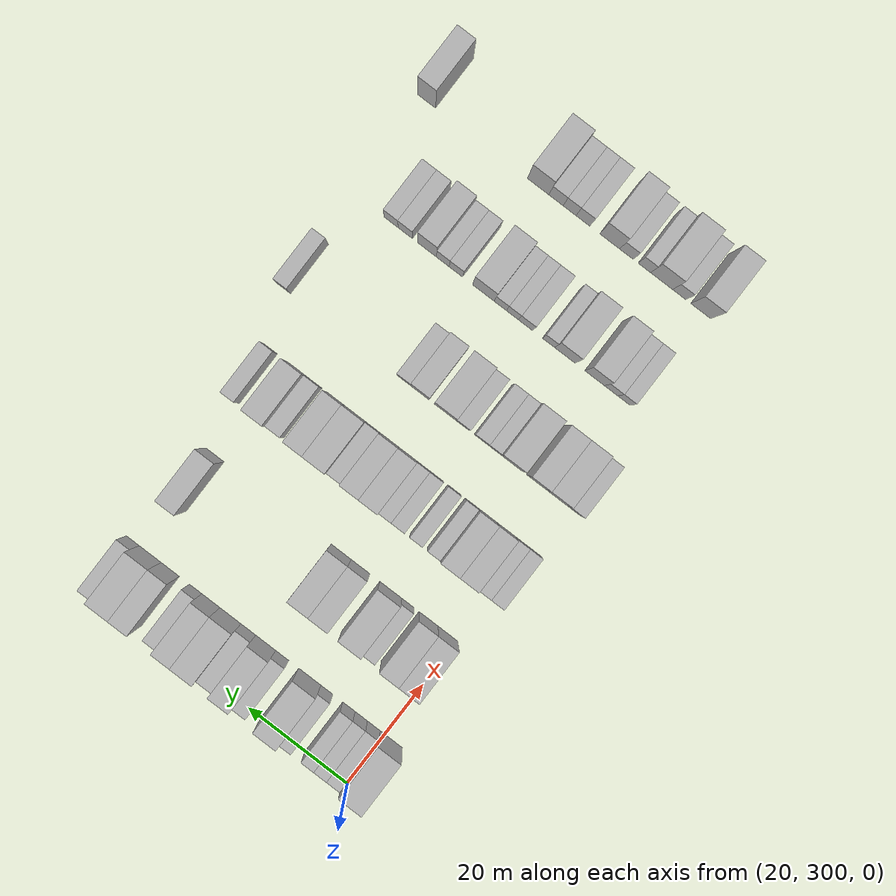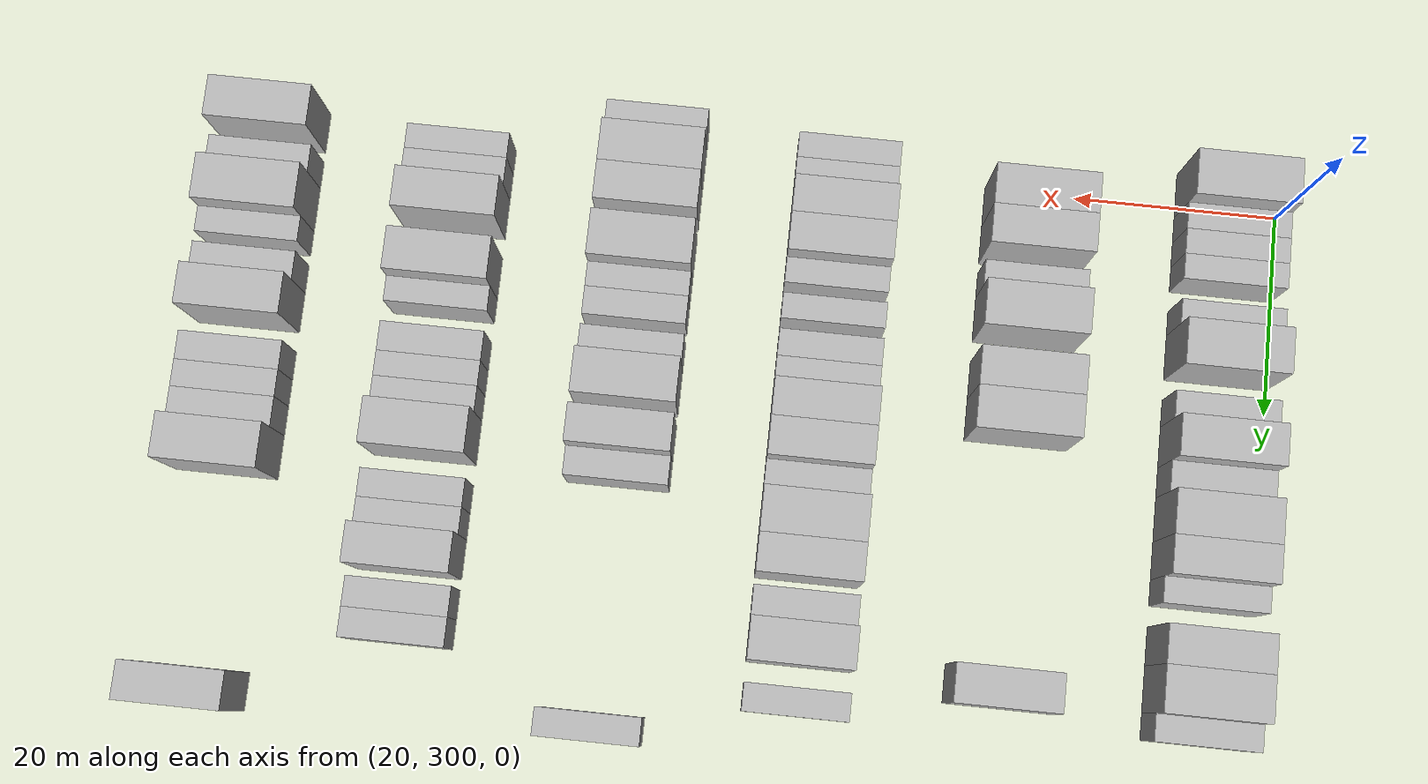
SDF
<sdf version="1.6">
 <world name="default">
  <model name="building_159">
   <static>1</static>
   <pose>25.0000 298.7395 0 0.000000 0.000000 0.000000</pose>
   <link name="link">
    <pose>0 0 4.50 0 0 0</pose>
    <collision name="collision"><geometry><box><size>10.0000 4.4855 9.0000</size></box></geometry></collision>
    <visual name="visual">
     <cast_shadows>0</cast_shadows>
     <geometry><box><size>10.0000 4.4855 9.0000</size></box></geometry>
     <material>
      <script>
       <uri>model://HANNAS_wall/materials/scripts</uri>
       <uri>model://HANNAS_wall/materials/textures</uri>
       <name>vrc/HANNAS_wall</name>
      </script>
     </material>
    </visual>
   </link>
  </model>
  <model name="building_160">
   <static>1</static>
   <pose>25.0000 302.2808 0 0.000000 0.000000 0.000000</pose>
   <link name="link">
    <pose>0 0 3.00 0 0 0</pose>
    <collision name="collision"><geometry><box><size>10.0000 2.5971 6.0000</size></box></geometry></collision>
    <visual name="visual">
     <cast_shadows>0</cast_shadows>
     <geometry><box><size>10.0000 2.5971 6.0000</size></box></geometry>
     <material>
      <script>
       <uri>model://HANNAS_wall/materials/scripts</uri>
       <uri>model://HANNAS_wall/materials/textures</uri>
       <name>vrc/HANNAS_wall</name>
      </script>
     </material>
    </visual>
   </link>
  </model>
  <model name="building_161">
   <static>1</static>
   <pose>25.0000 304.8237 0 0.000000 0.000000 0.000000</pose>
   <link name="link">
    <pose>0 0 3.00 0 0 0</pose>
    <collision name="collision"><geometry><box><size>10.0000 2.4886 6.0000</size></box></geometry></collision>
    <visual name="visual">
     <cast_shadows>0</cast_shadows>
     <geometry><box><size>10.0000 2.4886 6.0000</size></box></geometry>
     <material>
      <script>
       <uri>model://HANNAS_wall/materials/scripts</uri>
       <uri>model://HANNAS_wall/materials/textures</uri>
       <name>vrc/HANNAS_wall</name>
      </script>
     </material>
    </visual>
   </link>
  </model>
  <model name="building_162">
   <static>1</static>
   <pose>25.0000 307.3164 0 0.000000 0.000000 0.000000</pose>
   <link name="link">
    <pose>0 0 3.00 0 0 0</pose>
    <collision name="collision"><geometry><box><size>10.0000 2.4968 6.0000</size></box></geometry></collision>
    <visual name="visual">
     <cast_shadows>0</cast_shadows>
     <geometry><box><size>10.0000 2.4968 6.0000</size></box></geometry>
     <material>
      <script>
       <uri>model://HANNAS_wall/materials/scripts</uri>
       <uri>model://HANNAS_wall/materials/textures</uri>
       <name>vrc/HANNAS_wall</name>
      </script>
     </material>
    </visual>
   </link>
  </model>
  <model name="building_163">
   <static>1</static>
   <pose>25.0000 311.7886 0 0.000000 0.000000 0.000000</pose>
   <link name="link">
    <pose>0 0 3.00 0 0 0</pose>
    <collision name="collision"><geometry><box><size>10.0000 2.4477 6.0000</size></box></geometry></collision>
    <visual name="visual">
     <cast_shadows>0</cast_shadows>
     <geometry><box><size>10.0000 2.4477 6.0000</size></box></geometry>
     <material>
      <script>
       <uri>model://HANNAS_wall/materials/scripts</uri>
       <uri>model://HANNAS_wall/materials/textures</uri>
       <name>vrc/HANNAS_wall</name>
      </script>
     </material>
    </visual>
   </link>
  </model>
  <model name="building_164">
   <static>1</static>
   <pose>25.0000 315.2476 0 0.000000 0.000000 0.000000</pose>
   <link name="link">
    <pose>0 0 4.50 0 0 0</pose>
    <collision name="collision"><geometry><box><size>10.0000 4.4702 9.0000</size></box></geometry></collision>
    <visual name="visual">
     <cast_shadows>0</cast_shadows>
     <geometry><box><size>10.0000 4.4702 9.0000</size></box></geometry>
     <material>
      <script>
       <uri>model://HANNAS_wall/materials/scripts</uri>
       <uri>model://HANNAS_wall/materials/textures</uri>
       <name>vrc/HANNAS_wall</name>
      </script>
     </material>
    </visual>
   </link>
  </model>
  <model name="building_165">
   <static>1</static>
   <pose>25.0000 320.8200 0 0.000000 0.000000 0.000000</pose>
   <link name="link">
    <pose>0 0 3.00 0 0 0</pose>
    <collision name="collision"><geometry><box><size>10.0000 2.6747 6.0000</size></box></geometry></collision>
    <visual name="visual">
     <cast_shadows>0</cast_shadows>
     <geometry><box><size>10.0000 2.6747 6.0000</size></box></geometry>
     <material>
      <script>
       <uri>model://HANNAS_wall/materials/scripts</uri>
       <uri>model://HANNAS_wall/materials/textures</uri>
       <name>vrc/HANNAS_wall</name>
      </script>
     </material>
    </visual>
   </link>
  </model>
  <model name="building_166">
   <static>1</static>
   <pose>25.0000 324.1825 0 0.000000 0.000000 0.000000</pose>
   <link name="link">
    <pose>0 0 4.50 0 0 0</pose>
    <collision name="collision"><geometry><box><size>10.0000 4.0502 9.0000</size></box></geometry></collision>
    <visual name="visual">
     <cast_shadows>0</cast_shadows>
     <geometry><box><size>10.0000 4.0502 9.0000</size></box></geometry>
     <material>
      <script>
       <uri>model://HANNAS_wall/materials/scripts</uri>
       <uri>model://HANNAS_wall/materials/textures</uri>
       <name>vrc/HANNAS_wall</name>
      </script>
     </material>
    </visual>
   </link>
  </model>
  <model name="building_167">
   <static>1</static>
   <pose>25.0000 327.6981 0 0.000000 0.000000 0.000000</pose>
   <link name="link">
    <pose>0 0 3.00 0 0 0</pose>
    <collision name="collision"><geometry><box><size>10.0000 2.9810 6.0000</size></box></geometry></collision>
    <visual name="visual">
     <cast_shadows>0</cast_shadows>
     <geometry><box><size>10.0000 2.9810 6.0000</size></box></geometry>
     <material>
      <script>
       <uri>model://HANNAS_wall/materials/scripts</uri>
       <uri>model://HANNAS_wall/materials/textures</uri>
       <name>vrc/HANNAS_wall</name>
      </script>
     </material>
    </visual>
   </link>
  </model>
  <model name="building_168">
   <static>1</static>
   <pose>25.0000 331.3362 0 0.000000 0.000000 0.000000</pose>
   <link name="link">
    <pose>0 0 4.50 0 0 0</pose>
    <collision name="collision"><geometry><box><size>10.0000 4.2954 9.0000</size></box></geometry></collision>
    <visual name="visual">
     <cast_shadows>0</cast_shadows>
     <geometry><box><size>10.0000 4.2954 9.0000</size></box></geometry>
     <material>
      <script>
       <uri>model://HANNAS_wall/materials/scripts</uri>
       <uri>model://HANNAS_wall/materials/textures</uri>
       <name>vrc/HANNAS_wall</name>
      </script>
     </material>
    </visual>
   </link>
  </model>
  <model name="building_169">
   <static>1</static>
   <pose>25.0000 335.3184 0 0.000000 0.000000 0.000000</pose>
   <link name="link">
    <pose>0 0 4.50 0 0 0</pose>
    <collision name="collision"><geometry><box><size>10.0000 3.6690 9.0000</size></box></geometry></collision>
    <visual name="visual">
     <cast_shadows>0</cast_shadows>
     <geometry><box><size>10.0000 3.6690 9.0000</size></box></geometry>
     <material>
      <script>
       <uri>model://HANNAS_wall/materials/scripts</uri>
       <uri>model://HANNAS_wall/materials/textures</uri>
       <name>vrc/HANNAS_wall</name>
      </script>
     </material>
    </visual>
   </link>
  </model>
  <model name="building_170">
   <static>1</static>
   <pose>25.0000 338.4174 0 0.000000 0.000000 0.000000</pose>
   <link name="link">
    <pose>0 0 3.00 0 0 0</pose>
    <collision name="collision"><geometry><box><size>10.0000 2.5291 6.0000</size></box></geometry></collision>
    <visual name="visual">
     <cast_shadows>0</cast_shadows>
     <geometry><box><size>10.0000 2.5291 6.0000</size></box></geometry>
     <material>
      <script>
       <uri>model://HANNAS_wall/materials/scripts</uri>
       <uri>model://HANNAS_wall/materials/textures</uri>
       <name>vrc/HANNAS_wall</name>
      </script>
     </material>
    </visual>
   </link>
  </model>
  <model name="building_171">
   <static>1</static>
   <pose>25.0000 343.5344 0 0.000000 0.000000 0.000000</pose>
   <link name="link">
    <pose>0 0 4.50 0 0 0</pose>
    <collision name="collision"><geometry><box><size>10.0000 3.7047 9.0000</size></box></geometry></collision>
    <visual name="visual">
     <cast_shadows>0</cast_shadows>
     <geometry><box><size>10.0000 3.7047 9.0000</size></box></geometry>
     <material>
      <script>
       <uri>model://HANNAS_wall/materials/scripts</uri>
       <uri>model://HANNAS_wall/materials/textures</uri>
       <name>vrc/HANNAS_wall</name>
      </script>
     </material>
    </visual>
   </link>
  </model>
  <model name="building_172">
   <static>1</static>
   <pose>25.0000 347.6255 0 0.000000 0.000000 0.000000</pose>
   <link name="link">
    <pose>0 0 4.50 0 0 0</pose>
    <collision name="collision"><geometry><box><size>10.0000 4.4776 9.0000</size></box></geometry></collision>
    <visual name="visual">
     <cast_shadows>0</cast_shadows>
     <geometry><box><size>10.0000 4.4776 9.0000</size></box></geometry>
     <material>
      <script>
       <uri>model://HANNAS_wall/materials/scripts</uri>
       <uri>model://HANNAS_wall/materials/textures</uri>
       <name>vrc/HANNAS_wall</name>
      </script>
     </material>
    </visual>
   </link>
  </model>
  <model name="building_173">
   <static>1</static>
   <pose>25.0000 351.1604 0 0.000000 0.000000 0.000000</pose>
   <link name="link">
    <pose>0 0 3.00 0 0 0</pose>
    <collision name="collision"><geometry><box><size>10.0000 2.5922 6.0000</size></box></geometry></collision>
    <visual name="visual">
     <cast_shadows>0</cast_shadows>
     <geometry><box><size>10.0000 2.5922 6.0000</size></box></geometry>
     <material>
      <script>
       <uri>model://HANNAS_wall/materials/scripts</uri>
       <uri>model://HANNAS_wall/materials/textures</uri>
       <name>vrc/HANNAS_wall</name>
      </script>
     </material>
    </visual>
   </link>
  </model>
  <model name="building_342">
   <static>1</static>
   <pose>44.0000 301.8838 0 0.000000 0.000000 0.000000</pose>
   <link name="link">
    <pose>0 0 4.50 0 0 0</pose>
    <collision name="collision"><geometry><box><size>10.0000 3.9839 9.0000</size></box></geometry></collision>
    <visual name="visual">
     <cast_shadows>0</cast_shadows>
     <geometry><box><size>10.0000 3.9839 9.0000</size></box></geometry>
     <material>
      <script>
       <uri>model://HANNAS_wall/materials/scripts</uri>
       <uri>model://HANNAS_wall/materials/textures</uri>
       <name>vrc/HANNAS_wall</name>
      </script>
     </material>
    </visual>
   </link>
  </model>
  <model name="building_343">
   <static>1</static>
   <pose>44.0000 305.7755 0 0.000000 0.000000 0.000000</pose>
   <link name="link">
    <pose>0 0 4.50 0 0 0</pose>
    <collision name="collision"><geometry><box><size>10.0000 3.7995 9.0000</size></box></geometry></collision>
    <visual name="visual">
     <cast_shadows>0</cast_shadows>
     <geometry><box><size>10.0000 3.7995 9.0000</size></box></geometry>
     <material>
      <script>
       <uri>model://HANNAS_wall/materials/scripts</uri>
       <uri>model://HANNAS_wall/materials/textures</uri>
       <name>vrc/HANNAS_wall</name>
      </script>
     </material>
    </visual>
   </link>
  </model>
  <model name="building_344">
   <static>1</static>
   <pose>44.0000 309.9324 0 0.000000 0.000000 0.000000</pose>
   <link name="link">
    <pose>0 0 3.00 0 0 0</pose>
    <collision name="collision"><geometry><box><size>10.0000 2.5143 6.0000</size></box></geometry></collision>
    <visual name="visual">
     <cast_shadows>0</cast_shadows>
     <geometry><box><size>10.0000 2.5143 6.0000</size></box></geometry>
     <material>
      <script>
       <uri>model://HANNAS_wall/materials/scripts</uri>
       <uri>model://HANNAS_wall/materials/textures</uri>
       <name>vrc/HANNAS_wall</name>
      </script>
     </material>
    </visual>
   </link>
  </model>
  <model name="building_345">
   <static>1</static>
   <pose>44.0000 313.4138 0 0.000000 0.000000 0.000000</pose>
   <link name="link">
    <pose>0 0 4.50 0 0 0</pose>
    <collision name="collision"><geometry><box><size>10.0000 4.4484 9.0000</size></box></geometry></collision>
    <visual name="visual">
     <cast_shadows>0</cast_shadows>
     <geometry><box><size>10.0000 4.4484 9.0000</size></box></geometry>
     <material>
      <script>
       <uri>model://HANNAS_wall/materials/scripts</uri>
       <uri>model://HANNAS_wall/materials/textures</uri>
       <name>vrc/HANNAS_wall</name>
      </script>
     </material>
    </visual>
   </link>
  </model>
  <model name="building_346">
   <static>1</static>
   <pose>44.0000 319.5279 0 0.000000 0.000000 0.000000</pose>
   <link name="link">
    <pose>0 0 4.50 0 0 0</pose>
    <collision name="collision"><geometry><box><size>10.0000 3.7798 9.0000</size></box></geometry></collision>
    <visual name="visual">
     <cast_shadows>0</cast_shadows>
     <geometry><box><size>10.0000 3.7798 9.0000</size></box></geometry>
     <material>
      <script>
       <uri>model://HANNAS_wall/materials/scripts</uri>
       <uri>model://HANNAS_wall/materials/textures</uri>
       <name>vrc/HANNAS_wall</name>
      </script>
     </material>
    </visual>
   </link>
  </model>
  <model name="building_347">
   <static>1</static>
   <pose>44.0000 323.4569 0 0.000000 0.000000 0.000000</pose>
   <link name="link">
    <pose>0 0 4.50 0 0 0</pose>
    <collision name="collision"><geometry><box><size>10.0000 4.0780 9.0000</size></box></geometry></collision>
    <visual name="visual">
     <cast_shadows>0</cast_shadows>
     <geometry><box><size>10.0000 4.0780 9.0000</size></box></geometry>
     <material>
      <script>
       <uri>model://HANNAS_wall/materials/scripts</uri>
       <uri>model://HANNAS_wall/materials/textures</uri>
       <name>vrc/HANNAS_wall</name>
      </script>
     </material>
    </visual>
   </link>
  </model>
  <model name="building_348">
   <static>1</static>
   <pose>44.0000 349.0590 0 0.000000 0.000000 0.000000</pose>
   <link name="link">
    <pose>0 0 4.50 0 0 0</pose>
    <collision name="collision"><geometry><box><size>10.0000 3.7087 9.0000</size></box></geometry></collision>
    <visual name="visual">
     <cast_shadows>0</cast_shadows>
     <geometry><box><size>10.0000 3.7087 9.0000</size></box></geometry>
     <material>
      <script>
       <uri>model://HANNAS_wall/materials/scripts</uri>
       <uri>model://HANNAS_wall/materials/textures</uri>
       <name>vrc/HANNAS_wall</name>
      </script>
     </material>
    </visual>
   </link>
  </model>
  <model name="building_506">
   <static>1</static>
   <pose>63.0000 299.1091 0 0.000000 0.000000 0.000000</pose>
   <link name="link">
    <pose>0 0 3.00 0 0 0</pose>
    <collision name="collision"><geometry><box><size>10.0000 2.5163 6.0000</size></box></geometry></collision>
    <visual name="visual">
     <cast_shadows>0</cast_shadows>
     <geometry><box><size>10.0000 2.5163 6.0000</size></box></geometry>
     <material>
      <script>
       <uri>model://HANNAS_wall/materials/scripts</uri>
       <uri>model://HANNAS_wall/materials/textures</uri>
       <name>vrc/HANNAS_wall</name>
      </script>
     </material>
    </visual>
   </link>
  </model>
  <model name="building_507">
   <static>1</static>
   <pose>63.0000 301.6814 0 0.000000 0.000000 0.000000</pose>
   <link name="link">
    <pose>0 0 3.00 0 0 0</pose>
    <collision name="collision"><geometry><box><size>10.0000 2.6283 6.0000</size></box></geometry></collision>
    <visual name="visual">
     <cast_shadows>0</cast_shadows>
     <geometry><box><size>10.0000 2.6283 6.0000</size></box></geometry>
     <material>
      <script>
       <uri>model://HANNAS_wall/materials/scripts</uri>
       <uri>model://HANNAS_wall/materials/textures</uri>
       <name>vrc/HANNAS_wall</name>
      </script>
     </material>
    </visual>
   </link>
  </model>
  <model name="building_508">
   <static>1</static>
   <pose>63.0000 304.8255 0 0.000000 0.000000 0.000000</pose>
   <link name="link">
    <pose>0 0 4.50 0 0 0</pose>
    <collision name="collision"><geometry><box><size>10.0000 3.6599 9.0000</size></box></geometry></collision>
    <visual name="visual">
     <cast_shadows>0</cast_shadows>
     <geometry><box><size>10.0000 3.6599 9.0000</size></box></geometry>
     <material>
      <script>
       <uri>model://HANNAS_wall/materials/scripts</uri>
       <uri>model://HANNAS_wall/materials/textures</uri>
       <name>vrc/HANNAS_wall</name>
      </script>
     </material>
    </visual>
   </link>
  </model>
  <model name="building_509">
   <static>1</static>
   <pose>63.0000 308.5233 0 0.000000 0.000000 0.000000</pose>
   <link name="link">
    <pose>0 0 4.50 0 0 0</pose>
    <collision name="collision"><geometry><box><size>10.0000 3.7356 9.0000</size></box></geometry></collision>
    <visual name="visual">
     <cast_shadows>0</cast_shadows>
     <geometry><box><size>10.0000 3.7356 9.0000</size></box></geometry>
     <material>
      <script>
       <uri>model://HANNAS_wall/materials/scripts</uri>
       <uri>model://HANNAS_wall/materials/textures</uri>
       <name>vrc/HANNAS_wall</name>
      </script>
     </material>
    </visual>
   </link>
  </model>
  <model name="building_510">
   <static>1</static>
   <pose>63.0000 311.6443 0 0.000000 0.000000 0.000000</pose>
   <link name="link">
    <pose>0 0 3.00 0 0 0</pose>
    <collision name="collision"><geometry><box><size>10.0000 2.5064 6.0000</size></box></geometry></collision>
    <visual name="visual">
     <cast_shadows>0</cast_shadows>
     <geometry><box><size>10.0000 2.5064 6.0000</size></box></geometry>
     <material>
      <script>
       <uri>model://HANNAS_wall/materials/scripts</uri>
       <uri>model://HANNAS_wall/materials/textures</uri>
       <name>vrc/HANNAS_wall</name>
      </script>
     </material>
    </visual>
   </link>
  </model>
  <model name="building_511">
   <static>1</static>
   <pose>63.0000 315.1609 0 0.000000 0.000000 0.000000</pose>
   <link name="link">
    <pose>0 0 3.00 0 0 0</pose>
    <collision name="collision"><geometry><box><size>10.0000 2.5270 6.0000</size></box></geometry></collision>
    <visual name="visual">
     <cast_shadows>0</cast_shadows>
     <geometry><box><size>10.0000 2.5270 6.0000</size></box></geometry>
     <material>
      <script>
       <uri>model://HANNAS_wall/materials/scripts</uri>
       <uri>model://HANNAS_wall/materials/textures</uri>
       <name>vrc/HANNAS_wall</name>
      </script>
     </material>
    </visual>
   </link>
  </model>
  <model name="building_512">
   <static>1</static>
   <pose>63.0000 318.7464 0 0.000000 0.000000 0.000000</pose>
   <link name="link">
    <pose>0 0 3.00 0 0 0</pose>
    <collision name="collision"><geometry><box><size>10.0000 2.6439 6.0000</size></box></geometry></collision>
    <visual name="visual">
     <cast_shadows>0</cast_shadows>
     <geometry><box><size>10.0000 2.6439 6.0000</size></box></geometry>
     <material>
      <script>
       <uri>model://HANNAS_wall/materials/scripts</uri>
       <uri>model://HANNAS_wall/materials/textures</uri>
       <name>vrc/HANNAS_wall</name>
      </script>
     </material>
    </visual>
   </link>
  </model>
  <model name="building_513">
   <static>1</static>
   <pose>63.0000 321.3417 0 0.000000 0.000000 0.000000</pose>
   <link name="link">
    <pose>0 0 3.00 0 0 0</pose>
    <collision name="collision"><geometry><box><size>10.0000 2.5467 6.0000</size></box></geometry></collision>
    <visual name="visual">
     <cast_shadows>0</cast_shadows>
     <geometry><box><size>10.0000 2.5467 6.0000</size></box></geometry>
     <material>
      <script>
       <uri>model://HANNAS_wall/materials/scripts</uri>
       <uri>model://HANNAS_wall/materials/textures</uri>
       <name>vrc/HANNAS_wall</name>
      </script>
     </material>
    </visual>
   </link>
  </model>
  <model name="building_514">
   <static>1</static>
   <pose>63.0000 324.4595 0 0.000000 0.000000 0.000000</pose>
   <link name="link">
    <pose>0 0 4.50 0 0 0</pose>
    <collision name="collision"><geometry><box><size>10.0000 3.6889 9.0000</size></box></geometry></collision>
    <visual name="visual">
     <cast_shadows>0</cast_shadows>
     <geometry><box><size>10.0000 3.6889 9.0000</size></box></geometry>
     <material>
      <script>
       <uri>model://HANNAS_wall/materials/scripts</uri>
       <uri>model://HANNAS_wall/materials/textures</uri>
       <name>vrc/HANNAS_wall</name>
      </script>
     </material>
    </visual>
   </link>
  </model>
  <model name="building_515">
   <static>1</static>
   <pose>63.0000 328.1728 0 0.000000 0.000000 0.000000</pose>
   <link name="link">
    <pose>0 0 4.50 0 0 0</pose>
    <collision name="collision"><geometry><box><size>10.0000 3.7376 9.0000</size></box></geometry></collision>
    <visual name="visual">
     <cast_shadows>0</cast_shadows>
     <geometry><box><size>10.0000 3.7376 9.0000</size></box></geometry>
     <material>
      <script>
       <uri>model://HANNAS_wall/materials/scripts</uri>
       <uri>model://HANNAS_wall/materials/textures</uri>
       <name>vrc/HANNAS_wall</name>
      </script>
     </material>
    </visual>
   </link>
  </model>
  <model name="building_516">
   <static>1</static>
   <pose>63.0000 331.4340 0 0.000000 0.000000 0.000000</pose>
   <link name="link">
    <pose>0 0 3.00 0 0 0</pose>
    <collision name="collision"><geometry><box><size>10.0000 2.7849 6.0000</size></box></geometry></collision>
    <visual name="visual">
     <cast_shadows>0</cast_shadows>
     <geometry><box><size>10.0000 2.7849 6.0000</size></box></geometry>
     <material>
      <script>
       <uri>model://HANNAS_wall/materials/scripts</uri>
       <uri>model://HANNAS_wall/materials/textures</uri>
       <name>vrc/HANNAS_wall</name>
      </script>
     </material>
    </visual>
   </link>
  </model>
  <model name="building_517">
   <static>1</static>
   <pose>63.0000 335.0242 0 0.000000 0.000000 0.000000</pose>
   <link name="link">
    <pose>0 0 4.50 0 0 0</pose>
    <collision name="collision"><geometry><box><size>10.0000 4.3955 9.0000</size></box></geometry></collision>
    <visual name="visual">
     <cast_shadows>0</cast_shadows>
     <geometry><box><size>10.0000 4.3955 9.0000</size></box></geometry>
     <material>
      <script>
       <uri>model://HANNAS_wall/materials/scripts</uri>
       <uri>model://HANNAS_wall/materials/textures</uri>
       <name>vrc/HANNAS_wall</name>
      </script>
     </material>
    </visual>
   </link>
  </model>
  <model name="building_518">
   <static>1</static>
   <pose>63.0000 339.0660 0 0.000000 0.000000 0.000000</pose>
   <link name="link">
    <pose>0 0 4.50 0 0 0</pose>
    <collision name="collision"><geometry><box><size>10.0000 3.6881 9.0000</size></box></geometry></collision>
    <visual name="visual">
     <cast_shadows>0</cast_shadows>
     <geometry><box><size>10.0000 3.6881 9.0000</size></box></geometry>
     <material>
      <script>
       <uri>model://HANNAS_wall/materials/scripts</uri>
       <uri>model://HANNAS_wall/materials/textures</uri>
       <name>vrc/HANNAS_wall</name>
      </script>
     </material>
    </visual>
   </link>
  </model>
  <model name="building_519">
   <static>1</static>
   <pose>63.0000 343.4063 0 0.000000 0.000000 0.000000</pose>
   <link name="link">
    <pose>0 0 3.00 0 0 0</pose>
    <collision name="collision"><geometry><box><size>10.0000 2.9925 6.0000</size></box></geometry></collision>
    <visual name="visual">
     <cast_shadows>0</cast_shadows>
     <geometry><box><size>10.0000 2.9925 6.0000</size></box></geometry>
     <material>
      <script>
       <uri>model://HANNAS_wall/materials/scripts</uri>
       <uri>model://HANNAS_wall/materials/textures</uri>
       <name>vrc/HANNAS_wall</name>
      </script>
     </material>
    </visual>
   </link>
  </model>
  <model name="building_520">
   <static>1</static>
   <pose>63.0000 346.9385 0 0.000000 0.000000 0.000000</pose>
   <link name="link">
    <pose>0 0 4.50 0 0 0</pose>
    <collision name="collision"><geometry><box><size>10.0000 4.0719 9.0000</size></box></geometry></collision>
    <visual name="visual">
     <cast_shadows>0</cast_shadows>
     <geometry><box><size>10.0000 4.0719 9.0000</size></box></geometry>
     <material>
      <script>
       <uri>model://HANNAS_wall/materials/scripts</uri>
       <uri>model://HANNAS_wall/materials/textures</uri>
       <name>vrc/HANNAS_wall</name>
      </script>
     </material>
    </visual>
   </link>
  </model>
  <model name="building_521">
   <static>1</static>
   <pose>63.0000 352.3130 0 0.000000 0.000000 0.000000</pose>
   <link name="link">
    <pose>0 0 3.00 0 0 0</pose>
    <collision name="collision"><geometry><box><size>10.0000 2.6770 6.0000</size></box></geometry></collision>
    <visual name="visual">
     <cast_shadows>0</cast_shadows>
     <geometry><box><size>10.0000 2.6770 6.0000</size></box></geometry>
     <material>
      <script>
       <uri>model://HANNAS_wall/materials/scripts</uri>
       <uri>model://HANNAS_wall/materials/textures</uri>
       <name>vrc/HANNAS_wall</name>
      </script>
     </material>
    </visual>
   </link>
  </model>
  <model name="building_688">
   <static>1</static>
   <pose>82.0000 297.9588 0 0.000000 0.000000 0.000000</pose>
   <link name="link">
    <pose>0 0 3.00 0 0 0</pose>
    <collision name="collision"><geometry><box><size>10.0000 2.8852 6.0000</size></box></geometry></collision>
    <visual name="visual">
     <cast_shadows>0</cast_shadows>
     <geometry><box><size>10.0000 2.8852 6.0000</size></box></geometry>
     <material>
      <script>
       <uri>model://HANNAS_wall/materials/scripts</uri>
       <uri>model://HANNAS_wall/materials/textures</uri>
       <name>vrc/HANNAS_wall</name>
      </script>
     </material>
    </visual>
   </link>
  </model>
  <model name="building_689">
   <static>1</static>
   <pose>82.0000 301.4693 0 0.000000 0.000000 0.000000</pose>
   <link name="link">
    <pose>0 0 4.50 0 0 0</pose>
    <collision name="collision"><geometry><box><size>10.0000 4.1358 9.0000</size></box></geometry></collision>
    <visual name="visual">
     <cast_shadows>0</cast_shadows>
     <geometry><box><size>10.0000 4.1358 9.0000</size></box></geometry>
     <material>
      <script>
       <uri>model://HANNAS_wall/materials/scripts</uri>
       <uri>model://HANNAS_wall/materials/textures</uri>
       <name>vrc/HANNAS_wall</name>
      </script>
     </material>
    </visual>
   </link>
  </model>
  <model name="building_690">
   <static>1</static>
   <pose>82.0000 305.4377 0 0.000000 0.000000 0.000000</pose>
   <link name="link">
    <pose>0 0 4.50 0 0 0</pose>
    <collision name="collision"><geometry><box><size>10.0000 3.8011 9.0000</size></box></geometry></collision>
    <visual name="visual">
     <cast_shadows>0</cast_shadows>
     <geometry><box><size>10.0000 3.8011 9.0000</size></box></geometry>
     <material>
      <script>
       <uri>model://HANNAS_wall/materials/scripts</uri>
       <uri>model://HANNAS_wall/materials/textures</uri>
       <name>vrc/HANNAS_wall</name>
      </script>
     </material>
    </visual>
   </link>
  </model>
  <model name="building_691">
   <static>1</static>
   <pose>82.0000 310.5741 0 0.000000 0.000000 0.000000</pose>
   <link name="link">
    <pose>0 0 4.50 0 0 0</pose>
    <collision name="collision"><geometry><box><size>10.0000 4.4718 9.0000</size></box></geometry></collision>
    <visual name="visual">
     <cast_shadows>0</cast_shadows>
     <geometry><box><size>10.0000 4.4718 9.0000</size></box></geometry>
     <material>
      <script>
       <uri>model://HANNAS_wall/materials/scripts</uri>
       <uri>model://HANNAS_wall/materials/textures</uri>
       <name>vrc/HANNAS_wall</name>
      </script>
     </material>
    </visual>
   </link>
  </model>
  <model name="building_692">
   <static>1</static>
   <pose>82.0000 314.0241 0 0.000000 0.000000 0.000000</pose>
   <link name="link">
    <pose>0 0 3.00 0 0 0</pose>
    <collision name="collision"><geometry><box><size>10.0000 2.4283 6.0000</size></box></geometry></collision>
    <visual name="visual">
     <cast_shadows>0</cast_shadows>
     <geometry><box><size>10.0000 2.4283 6.0000</size></box></geometry>
     <material>
      <script>
       <uri>model://HANNAS_wall/materials/scripts</uri>
       <uri>model://HANNAS_wall/materials/textures</uri>
       <name>vrc/HANNAS_wall</name>
      </script>
     </material>
    </visual>
   </link>
  </model>
  <model name="building_693">
   <static>1</static>
   <pose>82.0000 316.6070 0 0.000000 0.000000 0.000000</pose>
   <link name="link">
    <pose>0 0 3.00 0 0 0</pose>
    <collision name="collision"><geometry><box><size>10.0000 2.7375 6.0000</size></box></geometry></collision>
    <visual name="visual">
     <cast_shadows>0</cast_shadows>
     <geometry><box><size>10.0000 2.7375 6.0000</size></box></geometry>
     <material>
      <script>
       <uri>model://HANNAS_wall/materials/scripts</uri>
       <uri>model://HANNAS_wall/materials/textures</uri>
       <name>vrc/HANNAS_wall</name>
      </script>
     </material>
    </visual>
   </link>
  </model>
  <model name="building_694">
   <static>1</static>
   <pose>82.0000 320.3478 0 0.000000 0.000000 0.000000</pose>
   <link name="link">
    <pose>0 0 3.00 0 0 0</pose>
    <collision name="collision"><geometry><box><size>10.0000 2.7442 6.0000</size></box></geometry></collision>
    <visual name="visual">
     <cast_shadows>0</cast_shadows>
     <geometry><box><size>10.0000 2.7442 6.0000</size></box></geometry>
     <material>
      <script>
       <uri>model://HANNAS_wall/materials/scripts</uri>
       <uri>model://HANNAS_wall/materials/textures</uri>
       <name>vrc/HANNAS_wall</name>
      </script>
     </material>
    </visual>
   </link>
  </model>
  <model name="building_695">
   <static>1</static>
   <pose>82.0000 323.9073 0 0.000000 0.000000 0.000000</pose>
   <link name="link">
    <pose>0 0 4.50 0 0 0</pose>
    <collision name="collision"><geometry><box><size>10.0000 4.3747 9.0000</size></box></geometry></collision>
    <visual name="visual">
     <cast_shadows>0</cast_shadows>
     <geometry><box><size>10.0000 4.3747 9.0000</size></box></geometry>
     <material>
      <script>
       <uri>model://HANNAS_wall/materials/scripts</uri>
       <uri>model://HANNAS_wall/materials/textures</uri>
       <name>vrc/HANNAS_wall</name>
      </script>
     </material>
    </visual>
   </link>
  </model>
  <model name="building_696">
   <static>1</static>
   <pose>82.0000 328.9257 0 0.000000 0.000000 0.000000</pose>
   <link name="link">
    <pose>0 0 4.50 0 0 0</pose>
    <collision name="collision"><geometry><box><size>10.0000 3.6620 9.0000</size></box></geometry></collision>
    <visual name="visual">
     <cast_shadows>0</cast_shadows>
     <geometry><box><size>10.0000 3.6620 9.0000</size></box></geometry>
     <material>
      <script>
       <uri>model://HANNAS_wall/materials/scripts</uri>
       <uri>model://HANNAS_wall/materials/textures</uri>
       <name>vrc/HANNAS_wall</name>
      </script>
     </material>
    </visual>
   </link>
  </model>
  <model name="building_697">
   <static>1</static>
   <pose>82.0000 332.1536 0 0.000000 0.000000 0.000000</pose>
   <link name="link">
    <pose>0 0 3.00 0 0 0</pose>
    <collision name="collision"><geometry><box><size>10.0000 2.7939 6.0000</size></box></geometry></collision>
    <visual name="visual">
     <cast_shadows>0</cast_shadows>
     <geometry><box><size>10.0000 2.7939 6.0000</size></box></geometry>
     <material>
      <script>
       <uri>model://HANNAS_wall/materials/scripts</uri>
       <uri>model://HANNAS_wall/materials/textures</uri>
       <name>vrc/HANNAS_wall</name>
      </script>
     </material>
    </visual>
   </link>
  </model>
  <model name="building_698">
   <static>1</static>
   <pose>82.0000 356.5393 0 0.000000 0.000000 0.000000</pose>
   <link name="link">
    <pose>0 0 3.00 0 0 0</pose>
    <collision name="collision"><geometry><box><size>10.0000 2.6592 6.0000</size></box></geometry></collision>
    <visual name="visual">
     <cast_shadows>0</cast_shadows>
     <geometry><box><size>10.0000 2.6592 6.0000</size></box></geometry>
     <material>
      <script>
       <uri>model://HANNAS_wall/materials/scripts</uri>
       <uri>model://HANNAS_wall/materials/textures</uri>
       <name>vrc/HANNAS_wall</name>
      </script>
     </material>
    </visual>
   </link>
  </model>
  <model name="building_861">
   <static>1</static>
   <pose>101.0000 302.1817 0 0.000000 0.000000 0.000000</pose>
   <link name="link">
    <pose>0 0 3.00 0 0 0</pose>
    <collision name="collision"><geometry><box><size>10.0000 2.4681 6.0000</size></box></geometry></collision>
    <visual name="visual">
     <cast_shadows>0</cast_shadows>
     <geometry><box><size>10.0000 2.4681 6.0000</size></box></geometry>
     <material>
      <script>
       <uri>model://HANNAS_wall/materials/scripts</uri>
       <uri>model://HANNAS_wall/materials/textures</uri>
       <name>vrc/HANNAS_wall</name>
      </script>
     </material>
    </visual>
   </link>
  </model>
  <model name="building_862">
   <static>1</static>
   <pose>101.0000 304.7652 0 0.000000 0.000000 0.000000</pose>
   <link name="link">
    <pose>0 0 3.00 0 0 0</pose>
    <collision name="collision"><geometry><box><size>10.0000 2.6989 6.0000</size></box></geometry></collision>
    <visual name="visual">
     <cast_shadows>0</cast_shadows>
     <geometry><box><size>10.0000 2.6989 6.0000</size></box></geometry>
     <material>
      <script>
       <uri>model://HANNAS_wall/materials/scripts</uri>
       <uri>model://HANNAS_wall/materials/textures</uri>
       <name>vrc/HANNAS_wall</name>
      </script>
     </material>
    </visual>
   </link>
  </model>
  <model name="building_863">
   <static>1</static>
   <pose>101.0000 308.0937 0 0.000000 0.000000 0.000000</pose>
   <link name="link">
    <pose>0 0 4.50 0 0 0</pose>
    <collision name="collision"><geometry><box><size>10.0000 3.9581 9.0000</size></box></geometry></collision>
    <visual name="visual">
     <cast_shadows>0</cast_shadows>
     <geometry><box><size>10.0000 3.9581 9.0000</size></box></geometry>
     <material>
      <script>
       <uri>model://HANNAS_wall/materials/scripts</uri>
       <uri>model://HANNAS_wall/materials/textures</uri>
       <name>vrc/HANNAS_wall</name>
      </script>
     </material>
    </visual>
   </link>
  </model>
  <model name="building_864">
   <static>1</static>
   <pose>101.0000 314.1503 0 0.000000 0.000000 0.000000</pose>
   <link name="link">
    <pose>0 0 4.50 0 0 0</pose>
    <collision name="collision"><geometry><box><size>10.0000 4.1550 9.0000</size></box></geometry></collision>
    <visual name="visual">
     <cast_shadows>0</cast_shadows>
     <geometry><box><size>10.0000 4.1550 9.0000</size></box></geometry>
     <material>
      <script>
       <uri>model://HANNAS_wall/materials/scripts</uri>
       <uri>model://HANNAS_wall/materials/textures</uri>
       <name>vrc/HANNAS_wall</name>
      </script>
     </material>
    </visual>
   </link>
  </model>
  <model name="building_865">
   <static>1</static>
   <pose>101.0000 317.4495 0 0.000000 0.000000 0.000000</pose>
   <link name="link">
    <pose>0 0 3.00 0 0 0</pose>
    <collision name="collision"><geometry><box><size>10.0000 2.4434 6.0000</size></box></geometry></collision>
    <visual name="visual">
     <cast_shadows>0</cast_shadows>
     <geometry><box><size>10.0000 2.4434 6.0000</size></box></geometry>
     <material>
      <script>
       <uri>model://HANNAS_wall/materials/scripts</uri>
       <uri>model://HANNAS_wall/materials/textures</uri>
       <name>vrc/HANNAS_wall</name>
      </script>
     </material>
    </visual>
   </link>
  </model>
  <model name="building_866">
   <static>1</static>
   <pose>101.0000 322.1034 0 0.000000 0.000000 0.000000</pose>
   <link name="link">
    <pose>0 0 3.00 0 0 0</pose>
    <collision name="collision"><geometry><box><size>10.0000 2.8644 6.0000</size></box></geometry></collision>
    <visual name="visual">
     <cast_shadows>0</cast_shadows>
     <geometry><box><size>10.0000 2.8644 6.0000</size></box></geometry>
     <material>
      <script>
       <uri>model://HANNAS_wall/materials/scripts</uri>
       <uri>model://HANNAS_wall/materials/textures</uri>
       <name>vrc/HANNAS_wall</name>
      </script>
     </material>
    </visual>
   </link>
  </model>
  <model name="building_867">
   <static>1</static>
   <pose>101.0000 324.7617 0 0.000000 0.000000 0.000000</pose>
   <link name="link">
    <pose>0 0 3.00 0 0 0</pose>
    <collision name="collision"><geometry><box><size>10.0000 2.4521 6.0000</size></box></geometry></collision>
    <visual name="visual">
     <cast_shadows>0</cast_shadows>
     <geometry><box><size>10.0000 2.4521 6.0000</size></box></geometry>
     <material>
      <script>
       <uri>model://HANNAS_wall/materials/scripts</uri>
       <uri>model://HANNAS_wall/materials/textures</uri>
       <name>vrc/HANNAS_wall</name>
      </script>
     </material>
    </visual>
   </link>
  </model>
  <model name="building_868">
   <static>1</static>
   <pose>101.0000 327.2346 0 0.000000 0.000000 0.000000</pose>
   <link name="link">
    <pose>0 0 3.00 0 0 0</pose>
    <collision name="collision"><geometry><box><size>10.0000 2.4936 6.0000</size></box></geometry></collision>
    <visual name="visual">
     <cast_shadows>0</cast_shadows>
     <geometry><box><size>10.0000 2.4936 6.0000</size></box></geometry>
     <material>
      <script>
       <uri>model://HANNAS_wall/materials/scripts</uri>
       <uri>model://HANNAS_wall/materials/textures</uri>
       <name>vrc/HANNAS_wall</name>
      </script>
     </material>
    </visual>
   </link>
  </model>
  <model name="building_869">
   <static>1</static>
   <pose>101.0000 330.6746 0 0.000000 0.000000 0.000000</pose>
   <link name="link">
    <pose>0 0 4.50 0 0 0</pose>
    <collision name="collision"><geometry><box><size>10.0000 4.3865 9.0000</size></box></geometry></collision>
    <visual name="visual">
     <cast_shadows>0</cast_shadows>
     <geometry><box><size>10.0000 4.3865 9.0000</size></box></geometry>
     <material>
      <script>
       <uri>model://HANNAS_wall/materials/scripts</uri>
       <uri>model://HANNAS_wall/materials/textures</uri>
       <name>vrc/HANNAS_wall</name>
      </script>
     </material>
    </visual>
   </link>
  </model>
  <model name="building_870">
   <static>1</static>
   <pose>101.0000 336.2360 0 0.000000 0.000000 0.000000</pose>
   <link name="link">
    <pose>0 0 3.00 0 0 0</pose>
    <collision name="collision"><geometry><box><size>10.0000 2.7362 6.0000</size></box></geometry></collision>
    <visual name="visual">
     <cast_shadows>0</cast_shadows>
     <geometry><box><size>10.0000 2.7362 6.0000</size></box></geometry>
     <material>
      <script>
       <uri>model://HANNAS_wall/materials/scripts</uri>
       <uri>model://HANNAS_wall/materials/textures</uri>
       <name>vrc/HANNAS_wall</name>
      </script>
     </material>
    </visual>
   </link>
  </model>
  <model name="building_871">
   <static>1</static>
   <pose>101.0000 338.9006 0 0.000000 0.000000 0.000000</pose>
   <link name="link">
    <pose>0 0 3.00 0 0 0</pose>
    <collision name="collision"><geometry><box><size>10.0000 2.5931 6.0000</size></box></geometry></collision>
    <visual name="visual">
     <cast_shadows>0</cast_shadows>
     <geometry><box><size>10.0000 2.5931 6.0000</size></box></geometry>
     <material>
      <script>
       <uri>model://HANNAS_wall/materials/scripts</uri>
       <uri>model://HANNAS_wall/materials/textures</uri>
       <name>vrc/HANNAS_wall</name>
      </script>
     </material>
    </visual>
   </link>
  </model>
  <model name="building_872">
   <static>1</static>
   <pose>101.0000 342.1231 0 0.000000 0.000000 0.000000</pose>
   <link name="link">
    <pose>0 0 4.50 0 0 0</pose>
    <collision name="collision"><geometry><box><size>10.0000 3.8519 9.0000</size></box></geometry></collision>
    <visual name="visual">
     <cast_shadows>0</cast_shadows>
     <geometry><box><size>10.0000 3.8519 9.0000</size></box></geometry>
     <material>
      <script>
       <uri>model://HANNAS_wall/materials/scripts</uri>
       <uri>model://HANNAS_wall/materials/textures</uri>
       <name>vrc/HANNAS_wall</name>
      </script>
     </material>
    </visual>
   </link>
  </model>
  <model name="building_873">
   <static>1</static>
   <pose>101.0000 346.4921 0 0.000000 0.000000 0.000000</pose>
   <link name="link">
    <pose>0 0 3.00 0 0 0</pose>
    <collision name="collision"><geometry><box><size>10.0000 2.8861 6.0000</size></box></geometry></collision>
    <visual name="visual">
     <cast_shadows>0</cast_shadows>
     <geometry><box><size>10.0000 2.8861 6.0000</size></box></geometry>
     <material>
      <script>
       <uri>model://HANNAS_wall/materials/scripts</uri>
       <uri>model://HANNAS_wall/materials/textures</uri>
       <name>vrc/HANNAS_wall</name>
      </script>
     </material>
    </visual>
   </link>
  </model>
  <model name="building_874">
   <static>1</static>
   <pose>101.0000 349.3566 0 0.000000 0.000000 0.000000</pose>
   <link name="link">
    <pose>0 0 3.00 0 0 0</pose>
    <collision name="collision"><geometry><box><size>10.0000 2.8429 6.0000</size></box></geometry></collision>
    <visual name="visual">
     <cast_shadows>0</cast_shadows>
     <geometry><box><size>10.0000 2.8429 6.0000</size></box></geometry>
     <material>
      <script>
       <uri>model://HANNAS_wall/materials/scripts</uri>
       <uri>model://HANNAS_wall/materials/textures</uri>
       <name>vrc/HANNAS_wall</name>
      </script>
     </material>
    </visual>
   </link>
  </model>
  <model name="building_1024">
   <static>1</static>
   <pose>120.0000 301.0728 0 0.000000 0.000000 0.000000</pose>
   <link name="link">
    <pose>0 0 4.50 0 0 0</pose>
    <collision name="collision"><geometry><box><size>10.0000 4.0410 9.0000</size></box></geometry></collision>
    <visual name="visual">
     <cast_shadows>0</cast_shadows>
     <geometry><box><size>10.0000 4.0410 9.0000</size></box></geometry>
     <material>
      <script>
       <uri>model://HANNAS_wall/materials/scripts</uri>
       <uri>model://HANNAS_wall/materials/textures</uri>
       <name>vrc/HANNAS_wall</name>
      </script>
     </material>
    </visual>
   </link>
  </model>
  <model name="building_1025">
   <static>1</static>
   <pose>120.0000 305.4525 0 0.000000 0.000000 0.000000</pose>
   <link name="link">
    <pose>0 0 3.00 0 0 0</pose>
    <collision name="collision"><geometry><box><size>10.0000 2.7184 6.0000</size></box></geometry></collision>
    <visual name="visual">
     <cast_shadows>0</cast_shadows>
     <geometry><box><size>10.0000 2.7184 6.0000</size></box></geometry>
     <material>
      <script>
       <uri>model://HANNAS_wall/materials/scripts</uri>
       <uri>model://HANNAS_wall/materials/textures</uri>
       <name>vrc/HANNAS_wall</name>
      </script>
     </material>
    </visual>
   </link>
  </model>
  <model name="building_1026">
   <static>1</static>
   <pose>120.0000 309.0407 0 0.000000 0.000000 0.000000</pose>
   <link name="link">
    <pose>0 0 4.50 0 0 0</pose>
    <collision name="collision"><geometry><box><size>10.0000 4.4581 9.0000</size></box></geometry></collision>
    <visual name="visual">
     <cast_shadows>0</cast_shadows>
     <geometry><box><size>10.0000 4.4581 9.0000</size></box></geometry>
     <material>
      <script>
       <uri>model://HANNAS_wall/materials/scripts</uri>
       <uri>model://HANNAS_wall/materials/textures</uri>
       <name>vrc/HANNAS_wall</name>
      </script>
     </material>
    </visual>
   </link>
  </model>
  <model name="building_1027">
   <static>1</static>
   <pose>120.0000 312.5220 0 0.000000 0.000000 0.000000</pose>
   <link name="link">
    <pose>0 0 3.00 0 0 0</pose>
    <collision name="collision"><geometry><box><size>10.0000 2.5046 6.0000</size></box></geometry></collision>
    <visual name="visual">
     <cast_shadows>0</cast_shadows>
     <geometry><box><size>10.0000 2.5046 6.0000</size></box></geometry>
     <material>
      <script>
       <uri>model://HANNAS_wall/materials/scripts</uri>
       <uri>model://HANNAS_wall/materials/textures</uri>
       <name>vrc/HANNAS_wall</name>
      </script>
     </material>
    </visual>
   </link>
  </model>
  <model name="building_1028">
   <static>1</static>
   <pose>120.0000 316.1637 0 0.000000 0.000000 0.000000</pose>
   <link name="link">
    <pose>0 0 3.00 0 0 0</pose>
    <collision name="collision"><geometry><box><size>10.0000 2.7787 6.0000</size></box></geometry></collision>
    <visual name="visual">
     <cast_shadows>0</cast_shadows>
     <geometry><box><size>10.0000 2.7787 6.0000</size></box></geometry>
     <material>
      <script>
       <uri>model://HANNAS_wall/materials/scripts</uri>
       <uri>model://HANNAS_wall/materials/textures</uri>
       <name>vrc/HANNAS_wall</name>
      </script>
     </material>
    </visual>
   </link>
  </model>
  <model name="building_1029">
   <static>1</static>
   <pose>120.0000 319.5628 0 0.000000 0.000000 0.000000</pose>
   <link name="link">
    <pose>0 0 4.50 0 0 0</pose>
    <collision name="collision"><geometry><box><size>10.0000 4.0195 9.0000</size></box></geometry></collision>
    <visual name="visual">
     <cast_shadows>0</cast_shadows>
     <geometry><box><size>10.0000 4.0195 9.0000</size></box></geometry>
     <material>
      <script>
       <uri>model://HANNAS_wall/materials/scripts</uri>
       <uri>model://HANNAS_wall/materials/textures</uri>
       <name>vrc/HANNAS_wall</name>
      </script>
     </material>
    </visual>
   </link>
  </model>
  <model name="building_1030">
   <static>1</static>
   <pose>120.0000 324.9753 0 0.000000 0.000000 0.000000</pose>
   <link name="link">
    <pose>0 0 3.00 0 0 0</pose>
    <collision name="collision"><geometry><box><size>10.0000 2.8055 6.0000</size></box></geometry></collision>
    <visual name="visual">
     <cast_shadows>0</cast_shadows>
     <geometry><box><size>10.0000 2.8055 6.0000</size></box></geometry>
     <material>
      <script>
       <uri>model://HANNAS_wall/materials/scripts</uri>
       <uri>model://HANNAS_wall/materials/textures</uri>
       <name>vrc/HANNAS_wall</name>
      </script>
     </material>
    </visual>
   </link>
  </model>
  <model name="building_1031">
   <static>1</static>
   <pose>120.0000 327.6921 0 0.000000 0.000000 0.000000</pose>
   <link name="link">
    <pose>0 0 3.00 0 0 0</pose>
    <collision name="collision"><geometry><box><size>10.0000 2.6282 6.0000</size></box></geometry></collision>
    <visual name="visual">
     <cast_shadows>0</cast_shadows>
     <geometry><box><size>10.0000 2.6282 6.0000</size></box></geometry>
     <material>
      <script>
       <uri>model://HANNAS_wall/materials/scripts</uri>
       <uri>model://HANNAS_wall/materials/textures</uri>
       <name>vrc/HANNAS_wall</name>
      </script>
     </material>
    </visual>
   </link>
  </model>
  <model name="building_1032">
   <static>1</static>
   <pose>120.0000 330.4618 0 0.000000 0.000000 0.000000</pose>
   <link name="link">
    <pose>0 0 3.00 0 0 0</pose>
    <collision name="collision"><geometry><box><size>10.0000 2.9111 6.0000</size></box></geometry></collision>
    <visual name="visual">
     <cast_shadows>0</cast_shadows>
     <geometry><box><size>10.0000 2.9111 6.0000</size></box></geometry>
     <material>
      <script>
       <uri>model://HANNAS_wall/materials/scripts</uri>
       <uri>model://HANNAS_wall/materials/textures</uri>
       <name>vrc/HANNAS_wall</name>
      </script>
     </material>
    </visual>
   </link>
  </model>
  <model name="building_1033">
   <static>1</static>
   <pose>120.0000 334.0861 0 0.000000 0.000000 0.000000</pose>
   <link name="link">
    <pose>0 0 4.50 0 0 0</pose>
    <collision name="collision"><geometry><box><size>10.0000 4.3374 9.0000</size></box></geometry></collision>
    <visual name="visual">
     <cast_shadows>0</cast_shadows>
     <geometry><box><size>10.0000 4.3374 9.0000</size></box></geometry>
     <material>
      <script>
       <uri>model://HANNAS_wall/materials/scripts</uri>
       <uri>model://HANNAS_wall/materials/textures</uri>
       <name>vrc/HANNAS_wall</name>
      </script>
     </material>
    </visual>
   </link>
  </model>
  <model name="building_1034">
   <static>1</static>
   <pose>120.0000 356.7373 0 0.000000 0.000000 0.000000</pose>
   <link name="link">
    <pose>0 0 4.50 0 0 0</pose>
    <collision name="collision"><geometry><box><size>10.0000 3.6550 9.0000</size></box></geometry></collision>
    <visual name="visual">
     <cast_shadows>0</cast_shadows>
     <geometry><box><size>10.0000 3.6550 9.0000</size></box></geometry>
     <material>
      <script>
       <uri>model://HANNAS_wall/materials/scripts</uri>
       <uri>model://HANNAS_wall/materials/textures</uri>
       <name>vrc/HANNAS_wall</name>
      </script>
     </material>
    </visual>
   </link>
  </model>
 </world>
</sdf>
